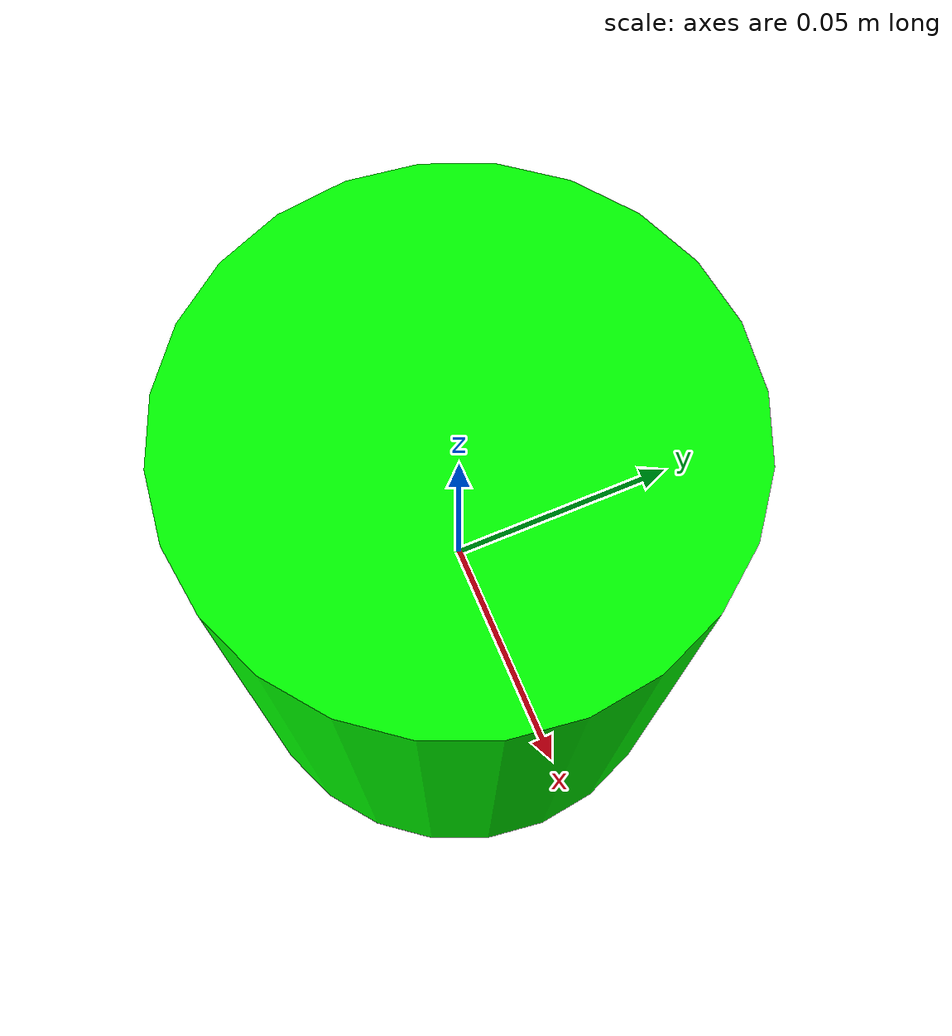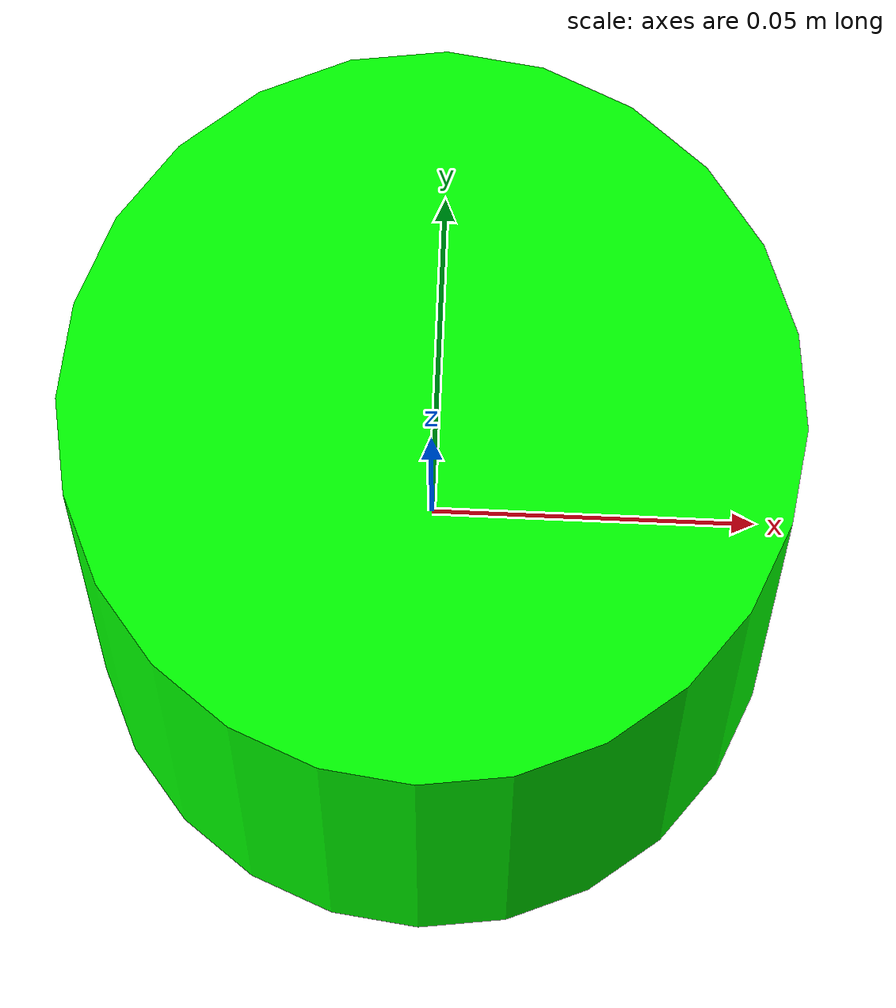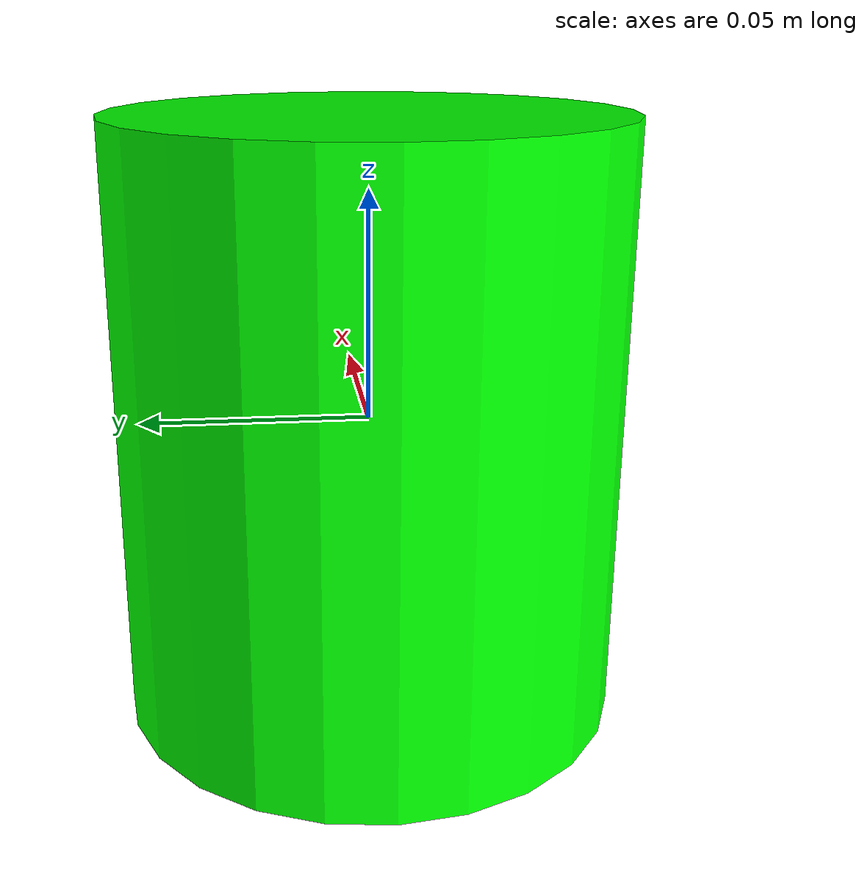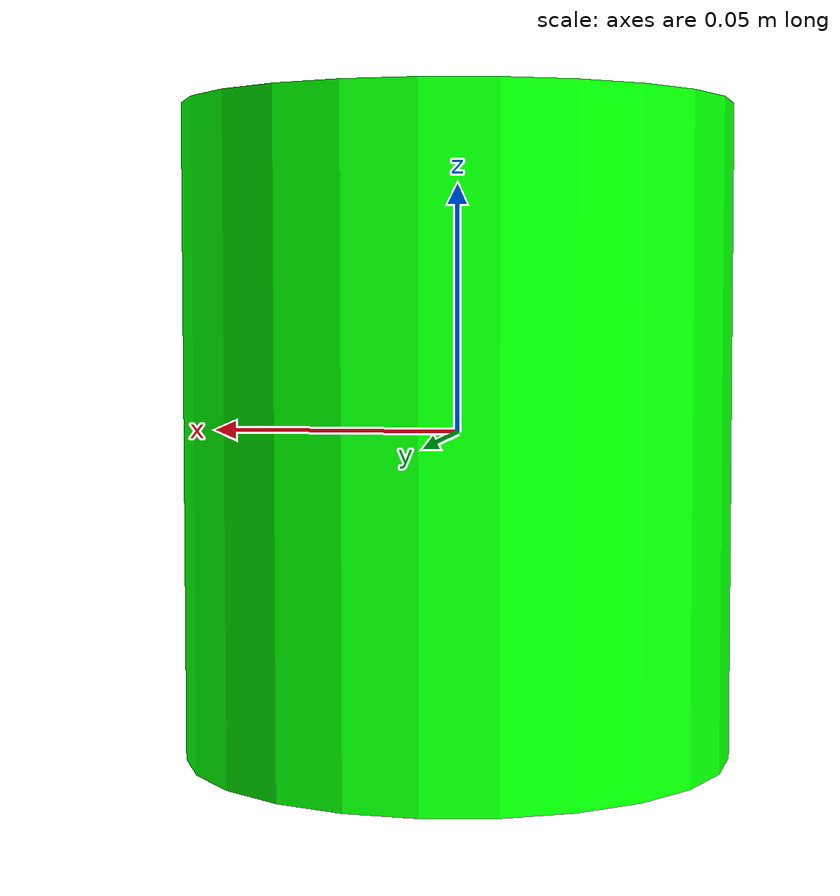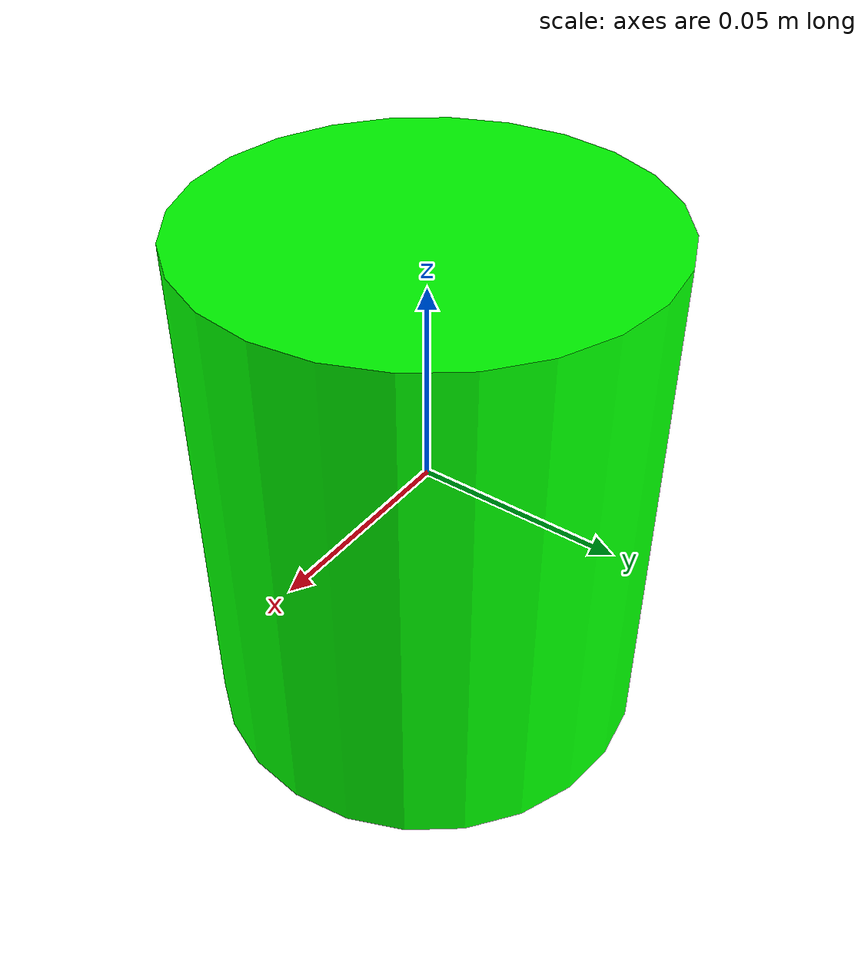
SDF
<?xml version="1.0" encoding="UTF-8"?>
<sdf version='1.9'>
  <model name='led_beacon_green'>
    <static>true</static>
    <link name='led'>
      <visual name='led_visual'>
        <geometry>
          <cylinder><radius>0.055</radius><length>0.131</length></cylinder>
        </geometry>
        <material>
          <ambient>0 1 0 1</ambient>
          <diffuse>0 1 0 1</diffuse>
          <specular>0.1 0.1 0.1 1</specular>
          <emissive>0 1 0 1</emissive>
        </material>
      </visual>
    </link>
  </model>
</sdf>
